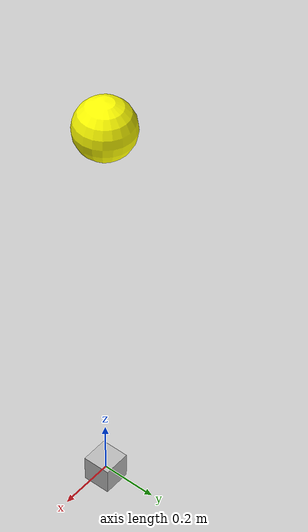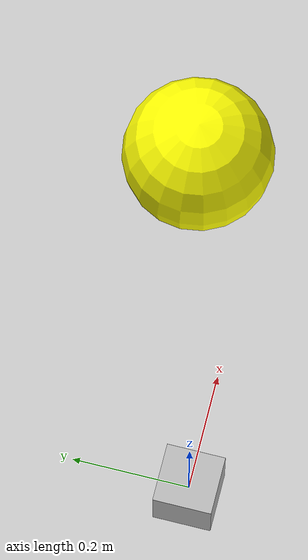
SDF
<?xml version="1.0" ?>
<sdf version="1.6">
  <model name="balloon">
    <!-- balloon -->
    <link name="balloon_link">
      <pose>0.0 0.0 1.5 0.0 0.0 0.0</pose>
      <collision name="collision">
          <geometry>
            <sphere>
              <radius>0.1</radius>
            </sphere>
          </geometry>
      </collision>
      <inertial>
        <mass>0.1</mass>
        <inertia>
            <ixx>1.000000</ixx>
            <ixy>0</ixy>
            <ixz>0</ixz>
            <iyy>1.0</iyy>
            <iyz>0</iyz>
            <izz>1.0</izz>
        </inertia>
      </inertial>
      <visual name="balloon_visual">
        <geometry>
            <sphere>
              <radius>0.1</radius>
            </sphere>
        </geometry>
        <material>
          <ambient>0.9 0.9 0.9 1</ambient>
          <diffuse>1.0 1.0 0.0 1</diffuse>
          <specular>0 0 0 0</specular>
          <emissive>0 0 0 1</emissive>
        </material>
      </visual>
    </link>

    <!-- weight -->
    <link name="weight_link">
      <pose>0.0 0.0 0.0 0.0 0.0 0.0</pose>
      <collision name="collision">
          <geometry>
            <box>
                <size>0.1 0.1 0.1</size>
            </box>
          </geometry>
      </collision>
      <inertial>
        <mass>100.0</mass>
        <inertia>
            <ixx>1.000000</ixx>
            <ixy>0</ixy>
            <ixz>0</ixz>
            <iyy>1.0</iyy>
            <iyz>0</iyz>
            <izz>1.0</izz>
        </inertia>
      </inertial>
      <visual name="weight_visual">
        <geometry>
            <box>
                <size>0.1 0.1 0.1</size>
            </box>
        </geometry>
      </visual>
    </link>

    <!-- balloon-weight joint -->
    <joint name="balloon_joint" type="fixed">
      <parent>weight_link</parent>
      <child>balloon_link</child>
      <pose>0 0 0 0 0 0</pose>
      <axis>
        <xyz>1 0 0</xyz>
        <limit>
            <lower>-1e+12</lower>
            <upper>1e+12</upper>
            <effort>-1</effort>
            <velocity>-1</velocity>
        </limit>
      </axis>
    </joint>
  </model>
</sdf>
